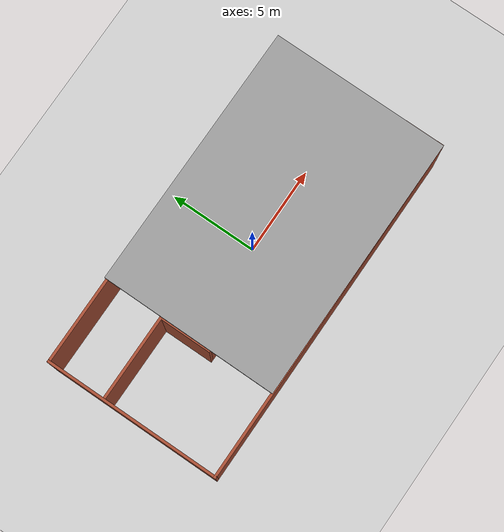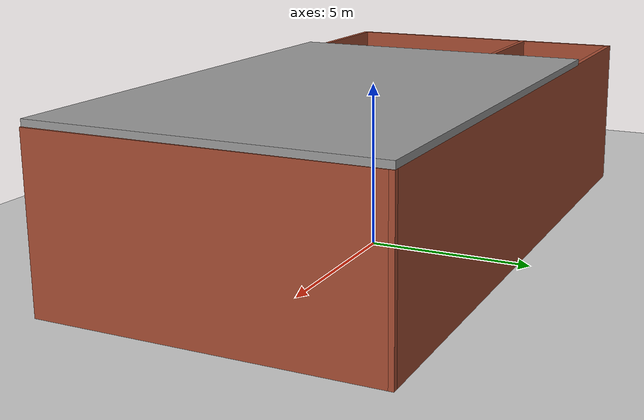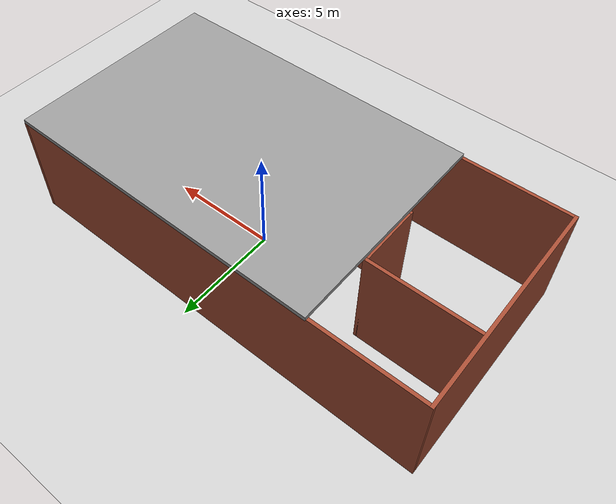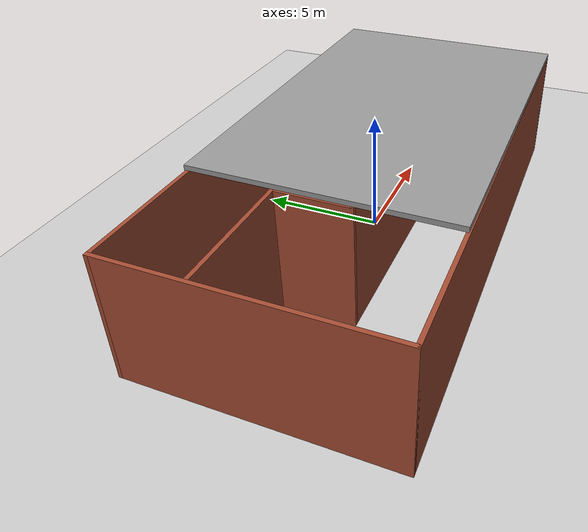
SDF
<sdf version="1.7">
 <world name="default">
  <light name="sun" type="directional">
   <pose>0 0 10 0 -0 0</pose>
   <diffuse>0.8 0.8 0.8 1</diffuse>
   <specular>0.2 0.2 0.2 1</specular>
   <attenuation>
    <range>1000</range>
    <constant>0.9</constant>
    <linear>0.01</linear>
    <quadratic>0.001</quadratic>
   </attenuation>
   <direction>-0.5 0.1 -0.9</direction>
   <spot><inner_angle>0</inner_angle><outer_angle>0</outer_angle><falloff>0</falloff></spot>
  </light>
  <model name="ground_plane">
   <static>1</static>
   <link name="link">
    <collision name="collision">
     <geometry><plane><normal>0 0 1</normal><size>100 100</size></plane></geometry>
     <surface><friction><ode><mu>100</mu><mu2>50</mu2></ode></friction></surface>
    </collision>
    <visual name="visual">
     <cast_shadows>0</cast_shadows>
     <geometry><plane><normal>0 0 1</normal><size>100 100</size></plane></geometry>
     <material>
      <script><uri>file://media/materials/scripts/gazebo.material</uri><name>Gazebo/Grey</name></script>
     </material>
    </visual>
   </link>
  </model>
  <gravity>0 0 -9.8</gravity>
  <magnetic_field>6e-06 2.3e-05 -4.2e-05</magnetic_field>
  <atmosphere type="adiabatic"/>
  <physics type="ode">
   <max_step_size>0.001</max_step_size>
   <real_time_factor>1</real_time_factor>
   <real_time_update_rate>1000</real_time_update_rate>
  </physics>
  <scene><ambient>0.4 0.4 0.4 1</ambient><background>0.7 0.7 0.7 1</background><shadows>1</shadows></scene>
  <audio><device>default</device></audio>
  <spherical_coordinates>
   <surface_model>EARTH_WGS84</surface_model>
   <latitude_deg>0</latitude_deg>
   <longitude_deg>0</longitude_deg>
   <elevation>0</elevation>
   <heading_deg>0</heading_deg>
  </spherical_coordinates>
  <model name="bdrobot_higher_building">
   <pose>-0.96386 -0.3611 0 0 -0 0</pose>
   <link name="Wall_11">
    <collision name="Wall_11_Collision">
     <geometry><box><size>20 0.15 5</size></box></geometry>
     <pose>0 0 2.5 0 -0 0</pose>
    </collision>
    <visual name="Wall_11_Visual">
     <pose>0 0 2.5 0 -0 0</pose>
     <geometry><box><size>20 0.15 5</size></box></geometry>
     <material>
      <script><uri>file://media/materials/scripts/gazebo.material</uri><name>Gazebo/Bricks</name></script>
      <ambient>1 1 1 1</ambient>
     </material>
     <meta><layer>0</layer></meta>
    </visual>
    <pose>0 -4.925 0 0 -0 0</pose>
   </link>
   <link name="Wall_12">
    <collision name="Wall_12_Collision">
     <geometry><box><size>10 0.15 5</size></box></geometry>
     <pose>0 0 2.5 0 -0 0</pose>
    </collision>
    <visual name="Wall_12_Visual">
     <pose>0 0 2.5 0 -0 0</pose>
     <geometry><box><size>10 0.15 5</size></box></geometry>
     <material>
      <script><uri>file://media/materials/scripts/gazebo.material</uri><name>Gazebo/Bricks</name></script>
      <ambient>1 1 1 1</ambient>
     </material>
     <meta><layer>0</layer></meta>
    </visual>
    <pose>9.925 -0 0 0 -0 1.5708</pose>
   </link>
   <link name="Wall_13">
    <collision name="Wall_13_Collision">
     <geometry><box><size>20 0.15 5</size></box></geometry>
     <pose>0 0 2.5 0 -0 0</pose>
    </collision>
    <visual name="Wall_13_Visual">
     <pose>0 0 2.5 0 -0 0</pose>
     <geometry><box><size>20 0.15 5</size></box></geometry>
     <material>
      <script><uri>file://media/materials/scripts/gazebo.material</uri><name>Gazebo/Bricks</name></script>
      <ambient>1 1 1 1</ambient>
     </material>
     <meta><layer>0</layer></meta>
    </visual>
    <pose>0 4.925 0 0 -0 3.14159</pose>
   </link>
   <link name="Wall_14">
    <collision name="Wall_14_Collision">
     <geometry><box><size>10 0.15 5</size></box></geometry>
     <pose>0 0 2.5 0 -0 0</pose>
    </collision>
    <visual name="Wall_14_Visual">
     <pose>0 0 2.5 0 -0 0</pose>
     <geometry><box><size>10 0.15 5</size></box></geometry>
     <material>
      <script><uri>file://media/materials/scripts/gazebo.material</uri><name>Gazebo/Bricks</name></script>
      <ambient>1 1 1 1</ambient>
     </material>
     <meta><layer>0</layer></meta>
    </visual>
    <pose>-9.925 -0 0 0 -0 -1.5708</pose>
   </link>
   <link name="Wall_16">
    <collision name="Wall_16_Collision">
     <geometry><box><size>5 0.15 5</size></box></geometry>
     <pose>0 0 2.5 0 -0 0</pose>
    </collision>
    <visual name="Wall_16_Visual">
     <pose>0 0 2.5 0 -0 0</pose>
     <geometry><box><size>5 0.15 5</size></box></geometry>
     <material>
      <script><uri>file://media/materials/scripts/gazebo.material</uri><name>Gazebo/Bricks</name></script>
      <ambient>1 1 1 1</ambient>
     </material>
     <meta><layer>0</layer></meta>
    </visual>
    <pose>-7.484 1.661 0 0 -0 0</pose>
   </link>
   <link name="Wall_17">
    <collision name="Wall_17_Collision">
     <geometry><box><size>3 0.15 5</size></box></geometry>
     <pose>0 0 2.5 0 -0 0</pose>
    </collision>
    <visual name="Wall_17_Visual">
     <pose>0 0 2.5 0 -0 0</pose>
     <geometry><box><size>3 0.15 5</size></box></geometry>
     <material>
      <script><uri>file://media/materials/scripts/gazebo.material</uri><name>Gazebo/Bricks</name></script>
      <ambient>1 1 1 1</ambient>
     </material>
     <meta><layer>0</layer></meta>
    </visual>
    <pose>-5.059 0.236 0 0 -0 -1.5708</pose>
   </link>
   <link name="Wall_18">
    <collision name="Wall_18_Collision">
     <geometry><box><size>7.5 0.15 5</size></box></geometry>
     <pose>0 0 2.5 0 -0 0</pose>
    </collision>
    <visual name="Wall_18_Visual">
     <pose>0 0 2.5 0 -0 0</pose>
     <geometry><box><size>7.5 0.15 5</size></box></geometry>
     <material>
      <script><uri>file://media/materials/scripts/gazebo.material</uri><name>Gazebo/Bricks</name></script>
      <ambient>1 1 1 1</ambient>
     </material>
     <meta><layer>0</layer></meta>
    </visual>
    <pose>-1.384 -1.189 0 0 -0 0</pose>
   </link>
   <link name="Wall_19">
    <collision name="Wall_19_Collision">
     <geometry><box><size>4 0.15 5</size></box></geometry>
     <pose>0 0 2.5 0 -0 0</pose>
    </collision>
    <visual name="Wall_19_Visual">
     <pose>0 0 2.5 0 -0 0</pose>
     <geometry><box><size>4 0.15 5</size></box></geometry>
     <material>
      <script><uri>file://media/materials/scripts/gazebo.material</uri><name>Gazebo/Bricks</name></script>
      <ambient>1 1 1 1</ambient>
     </material>
     <meta><layer>0</layer></meta>
    </visual>
    <pose>2.291 0.736 0 0 -0 1.5708</pose>
   </link>
   <link name="Wall_20">
    <collision name="Wall_20_Collision">
     <geometry><box><size>3 0.15 5</size></box></geometry>
     <pose>0 0 2.5 0 -0 0</pose>
    </collision>
    <visual name="Wall_20_Visual">
     <pose>0 0 2.5 0 -0 0</pose>
     <geometry><box><size>3 0.15 5</size></box></geometry>
     <material>
      <script><uri>file://media/materials/scripts/gazebo.material</uri><name>Gazebo/Bricks</name></script>
      <ambient>1 1 1 1</ambient>
     </material>
     <meta><layer>0</layer></meta>
    </visual>
    <pose>3.716 2.661 0 0 -0 0</pose>
   </link>
   <link name="Wall_22">
    <collision name="Wall_22_Collision">
     <geometry><box><size>2.25 0.15 5</size></box></geometry>
     <pose>0 0 2.5 0 -0 0</pose>
    </collision>
    <visual name="Wall_22_Visual">
     <pose>0 0 2.5 0 -0 0</pose>
     <geometry><box><size>2.25 0.15 5</size></box></geometry>
     <material>
      <script><uri>file://media/materials/scripts/gazebo.material</uri><name>Gazebo/Bricks</name></script>
      <ambient>1 1 1 1</ambient>
     </material>
     <meta><layer>0</layer></meta>
    </visual>
    <pose>2.28 -3.853 0 0 -0 -1.5708</pose>
   </link>
   <link name="Wall_24">
    <collision name="Wall_24_Collision">
     <geometry><box><size>2.5 0.15 5</size></box></geometry>
     <pose>0 0 2.5 0 -0 0</pose>
    </collision>
    <visual name="Wall_24_Visual">
     <pose>0 0 2.5 0 -0 0</pose>
     <geometry><box><size>2.5 0.15 5</size></box></geometry>
     <material>
      <script><uri>file://media/materials/scripts/gazebo.material</uri><name>Gazebo/Bricks</name></script>
      <ambient>1 1 1 1</ambient>
     </material>
     <meta><layer>0</layer></meta>
    </visual>
    <pose>8.59 2.679 0 0 -0 0</pose>
   </link>
   <static>1</static>
  </model>
  <model name="ceil">
   <link name="link_1">
    <inertial>
     <mass>1</mass>
     <inertia>
      <ixx>0.166667</ixx>
      <ixy>0</ixy>
      <ixz>0</ixz>
      <iyy>0.166667</iyy>
      <iyz>0</iyz>
      <izz>0.166667</izz>
     </inertia>
    </inertial>
    <visual name="visual">
     <geometry><box><size>15 10 0.2</size></box></geometry>
     <material>
      <lighting>1</lighting>
      <script><uri>file://media/materials/scripts/gazebo.material</uri><name>Gazebo/Grey</name></script>
      <shader type="pixel"><normal_map>__default__</normal_map></shader>
      <ambient>0.3 0.3 0.3 1</ambient>
      <diffuse>0.7 0.7 0.7 1</diffuse>
      <specular>0.01 0.01 0.01 1</specular>
      <emissive>0 0 0 1</emissive>
     </material>
    </visual>
    <collision name="collision">
     <geometry><box><size>15 10 0.2</size></box></geometry>
     <surface>
      <friction>
       <ode><mu>1</mu><mu2>1</mu2><fdir1>0 0 0</fdir1><slip1>0</slip1><slip2>0</slip2></ode>
       <torsional>
        <coefficient>1</coefficient>
        <patch_radius>0</patch_radius>
        <surface_radius>0</surface_radius>
        <use_patch_radius>1</use_patch_radius>
        <ode><slip>0</slip></ode>
       </torsional>
      </friction>
      <bounce><restitution_coefficient>0</restitution_coefficient><threshold>1e+06</threshold></bounce>
      <contact>
       <collide_without_contact>0</collide_without_contact>
       <collide_without_contact_bitmask>1</collide_without_contact_bitmask>
       <collide_bitmask>1</collide_bitmask>
       <ode>
        <soft_cfm>0</soft_cfm>
        <soft_erp>0.2</soft_erp>
        <kp>1e+13</kp>
        <kd>1</kd>
        <max_vel>0.01</max_vel>
        <min_depth>0</min_depth>
       </ode>
       <bullet>
        <split_impulse>1</split_impulse>
        <split_impulse_penetration_threshold>-0.01</split_impulse_penetration_threshold>
        <soft_cfm>0</soft_cfm>
        <soft_erp>0.2</soft_erp>
        <kp>1e+13</kp>
        <kd>1</kd>
       </bullet>
      </contact>
     </surface>
    </collision>
   </link>
   <static>0</static>
   <pose>1.49026 -0.337054 5.09999 -0 -4e-06 -0.003747</pose>
  </model>
 </world>
</sdf>
